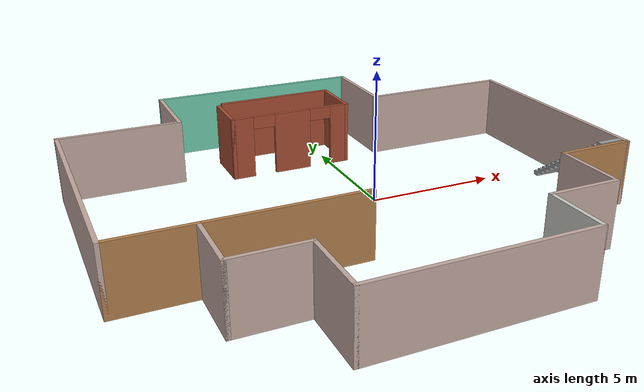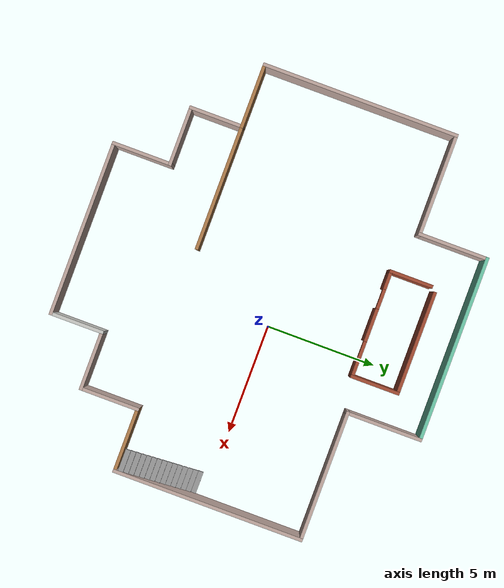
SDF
<?xml version='1.0'?>
<sdf version='1.6'>
  <model name='aakash.world'>
    <pose frame=''>-1.23426 -0.557609 0 0 -0 0</pose>
    <link name='Stairs_0'>
      <visual name='Stairs_0_Visual_0'>
        <pose frame=''>8.79859 0.013692 0.083333 0 -0 0</pose>
        <geometry>
          <box>
            <size>1 0.233333 0.166667</size>
          </box>
        </geometry>
        <material>
          <script>
            <uri>file://media/materials/scripts/gazebo.material</uri>
            <name>Gazebo/Grey</name>
          </script>
          <ambient>1 1 1 1</ambient>
        </material>
        <meta>
          <layer>0</layer>
        </meta>
      </visual>
      <collision name='Stairs_0_Collision_0'>
        <geometry>
          <box>
            <size>1 0.233333 0.166667</size>
          </box>
        </geometry>
        <pose frame=''>8.79859 0.013692 0.083333 0 -0 0</pose>
      </collision>
      <visual name='Stairs_0_Visual_1'>
        <pose frame=''>8.79859 -0.219641 0.25 0 -0 0</pose>
        <geometry>
          <box>
            <size>1 0.233333 0.166667</size>
          </box>
        </geometry>
        <material>
          <script>
            <uri>file://media/materials/scripts/gazebo.material</uri>
            <name>Gazebo/Grey</name>
          </script>
          <ambient>1 1 1 1</ambient>
        </material>
        <meta>
          <layer>0</layer>
        </meta>
      </visual>
      <collision name='Stairs_0_Collision_1'>
        <geometry>
          <box>
            <size>1 0.233333 0.166667</size>
          </box>
        </geometry>
        <pose frame=''>8.79859 -0.219641 0.25 0 -0 0</pose>
      </collision>
      <visual name='Stairs_0_Visual_2'>
        <pose frame=''>8.79859 -0.452974 0.416667 0 -0 0</pose>
        <geometry>
          <box>
            <size>1 0.233333 0.166667</size>
          </box>
        </geometry>
        <material>
          <script>
            <uri>file://media/materials/scripts/gazebo.material</uri>
            <name>Gazebo/Grey</name>
          </script>
          <ambient>1 1 1 1</ambient>
        </material>
        <meta>
          <layer>0</layer>
        </meta>
      </visual>
      <collision name='Stairs_0_Collision_2'>
        <geometry>
          <box>
            <size>1 0.233333 0.166667</size>
          </box>
        </geometry>
        <pose frame=''>8.79859 -0.452974 0.416667 0 -0 0</pose>
      </collision>
      <visual name='Stairs_0_Visual_3'>
        <pose frame=''>8.79859 -0.686308 0.583333 0 -0 0</pose>
        <geometry>
          <box>
            <size>1 0.233333 0.166667</size>
          </box>
        </geometry>
        <material>
          <script>
            <uri>file://media/materials/scripts/gazebo.material</uri>
            <name>Gazebo/Grey</name>
          </script>
          <ambient>1 1 1 1</ambient>
        </material>
        <meta>
          <layer>0</layer>
        </meta>
      </visual>
      <collision name='Stairs_0_Collision_3'>
        <geometry>
          <box>
            <size>1 0.233333 0.166667</size>
          </box>
        </geometry>
        <pose frame=''>8.79859 -0.686308 0.583333 0 -0 0</pose>
      </collision>
      <visual name='Stairs_0_Visual_4'>
        <pose frame=''>8.79859 -0.919641 0.75 0 -0 0</pose>
        <geometry>
          <box>
            <size>1 0.233333 0.166667</size>
          </box>
        </geometry>
        <material>
          <script>
            <uri>file://media/materials/scripts/gazebo.material</uri>
            <name>Gazebo/Grey</name>
          </script>
          <ambient>1 1 1 1</ambient>
        </material>
        <meta>
          <layer>0</layer>
        </meta>
      </visual>
      <collision name='Stairs_0_Collision_4'>
        <geometry>
          <box>
            <size>1 0.233333 0.166667</size>
          </box>
        </geometry>
        <pose frame=''>8.79859 -0.919641 0.75 0 -0 0</pose>
      </collision>
      <visual name='Stairs_0_Visual_5'>
        <pose frame=''>8.79859 -1.15297 0.916667 0 -0 0</pose>
        <geometry>
          <box>
            <size>1 0.233333 0.166667</size>
          </box>
        </geometry>
        <material>
          <script>
            <uri>file://media/materials/scripts/gazebo.material</uri>
            <name>Gazebo/Grey</name>
          </script>
          <ambient>1 1 1 1</ambient>
        </material>
        <meta>
          <layer>0</layer>
        </meta>
      </visual>
      <collision name='Stairs_0_Collision_5'>
        <geometry>
          <box>
            <size>1 0.233333 0.166667</size>
          </box>
        </geometry>
        <pose frame=''>8.79859 -1.15297 0.916667 0 -0 0</pose>
      </collision>
      <visual name='Stairs_0_Visual_6'>
        <pose frame=''>8.79859 -1.38631 1.08333 0 -0 0</pose>
        <geometry>
          <box>
            <size>1 0.233333 0.166667</size>
          </box>
        </geometry>
        <material>
          <script>
            <uri>file://media/materials/scripts/gazebo.material</uri>
            <name>Gazebo/Grey</name>
          </script>
          <ambient>1 1 1 1</ambient>
        </material>
        <meta>
          <layer>0</layer>
        </meta>
      </visual>
      <collision name='Stairs_0_Collision_6'>
        <geometry>
          <box>
            <size>1 0.233333 0.166667</size>
          </box>
        </geometry>
        <pose frame=''>8.79859 -1.38631 1.08333 0 -0 0</pose>
      </collision>
      <visual name='Stairs_0_Visual_7'>
        <pose frame=''>8.79859 -1.61964 1.25 0 -0 0</pose>
        <geometry>
          <box>
            <size>1 0.233333 0.166667</size>
          </box>
        </geometry>
        <material>
          <script>
            <uri>file://media/materials/scripts/gazebo.material</uri>
            <name>Gazebo/Grey</name>
          </script>
          <ambient>1 1 1 1</ambient>
        </material>
        <meta>
          <layer>0</layer>
        </meta>
      </visual>
      <collision name='Stairs_0_Collision_7'>
        <geometry>
          <box>
            <size>1 0.233333 0.166667</size>
          </box>
        </geometry>
        <pose frame=''>8.79859 -1.61964 1.25 0 -0 0</pose>
      </collision>
      <visual name='Stairs_0_Visual_8'>
        <pose frame=''>8.79859 -1.85297 1.41667 0 -0 0</pose>
        <geometry>
          <box>
            <size>1 0.233333 0.166667</size>
          </box>
        </geometry>
        <material>
          <script>
            <uri>file://media/materials/scripts/gazebo.material</uri>
            <name>Gazebo/Grey</name>
          </script>
          <ambient>1 1 1 1</ambient>
        </material>
        <meta>
          <layer>0</layer>
        </meta>
      </visual>
      <collision name='Stairs_0_Collision_8'>
        <geometry>
          <box>
            <size>1 0.233333 0.166667</size>
          </box>
        </geometry>
        <pose frame=''>8.79859 -1.85297 1.41667 0 -0 0</pose>
      </collision>
      <visual name='Stairs_0_Visual_9'>
        <pose frame=''>8.79859 -2.08631 1.58333 0 -0 0</pose>
        <geometry>
          <box>
            <size>1 0.233333 0.166667</size>
          </box>
        </geometry>
        <material>
          <script>
            <uri>file://media/materials/scripts/gazebo.material</uri>
            <name>Gazebo/Grey</name>
          </script>
          <ambient>1 1 1 1</ambient>
        </material>
        <meta>
          <layer>0</layer>
        </meta>
      </visual>
      <collision name='Stairs_0_Collision_9'>
        <geometry>
          <box>
            <size>1 0.233333 0.166667</size>
          </box>
        </geometry>
        <pose frame=''>8.79859 -2.08631 1.58333 0 -0 0</pose>
      </collision>
      <visual name='Stairs_0_Visual_10'>
        <pose frame=''>8.79859 -2.31964 1.75 0 -0 0</pose>
        <geometry>
          <box>
            <size>1 0.233333 0.166667</size>
          </box>
        </geometry>
        <material>
          <script>
            <uri>file://media/materials/scripts/gazebo.material</uri>
            <name>Gazebo/Grey</name>
          </script>
          <ambient>1 1 1 1</ambient>
        </material>
        <meta>
          <layer>0</layer>
        </meta>
      </visual>
      <collision name='Stairs_0_Collision_10'>
        <geometry>
          <box>
            <size>1 0.233333 0.166667</size>
          </box>
        </geometry>
        <pose frame=''>8.79859 -2.31964 1.75 0 -0 0</pose>
      </collision>
      <visual name='Stairs_0_Visual_11'>
        <pose frame=''>8.79859 -2.55297 1.91667 0 -0 0</pose>
        <geometry>
          <box>
            <size>1 0.233333 0.166667</size>
          </box>
        </geometry>
        <material>
          <script>
            <uri>file://media/materials/scripts/gazebo.material</uri>
            <name>Gazebo/Grey</name>
          </script>
          <ambient>1 1 1 1</ambient>
        </material>
        <meta>
          <layer>0</layer>
        </meta>
      </visual>
      <collision name='Stairs_0_Collision_11'>
        <geometry>
          <box>
            <size>1 0.233333 0.166667</size>
          </box>
        </geometry>
        <pose frame=''>8.79859 -2.55297 1.91667 0 -0 0</pose>
      </collision>
      <visual name='Stairs_0_Visual_12'>
        <pose frame=''>8.79859 -2.78631 2.08333 0 -0 0</pose>
        <geometry>
          <box>
            <size>1 0.233333 0.166667</size>
          </box>
        </geometry>
        <material>
          <script>
            <uri>file://media/materials/scripts/gazebo.material</uri>
            <name>Gazebo/Grey</name>
          </script>
          <ambient>1 1 1 1</ambient>
        </material>
        <meta>
          <layer>0</layer>
        </meta>
      </visual>
      <collision name='Stairs_0_Collision_12'>
        <geometry>
          <box>
            <size>1 0.233333 0.166667</size>
          </box>
        </geometry>
        <pose frame=''>8.79859 -2.78631 2.08333 0 -0 0</pose>
      </collision>
      <visual name='Stairs_0_Visual_13'>
        <pose frame=''>8.79859 -3.01964 2.25 0 -0 0</pose>
        <geometry>
          <box>
            <size>1 0.233333 0.166667</size>
          </box>
        </geometry>
        <material>
          <script>
            <uri>file://media/materials/scripts/gazebo.material</uri>
            <name>Gazebo/Grey</name>
          </script>
          <ambient>1 1 1 1</ambient>
        </material>
        <meta>
          <layer>0</layer>
        </meta>
      </visual>
      <collision name='Stairs_0_Collision_13'>
        <geometry>
          <box>
            <size>1 0.233333 0.166667</size>
          </box>
        </geometry>
        <pose frame=''>8.79859 -3.01964 2.25 0 -0 0</pose>
      </collision>
      <visual name='Stairs_0_Visual_14'>
        <pose frame=''>8.79859 -3.25298 2.41667 0 -0 0</pose>
        <geometry>
          <box>
            <size>1 0.233333 0.166667</size>
          </box>
        </geometry>
        <material>
          <script>
            <uri>file://media/materials/scripts/gazebo.material</uri>
            <name>Gazebo/Grey</name>
          </script>
          <ambient>1 1 1 1</ambient>
        </material>
        <meta>
          <layer>0</layer>
        </meta>
      </visual>
      <collision name='Stairs_0_Collision_14'>
        <geometry>
          <box>
            <size>1 0.233333 0.166667</size>
          </box>
        </geometry>
        <pose frame=''>8.79859 -3.25298 2.41667 0 -0 0</pose>
      </collision>
    </link>
    <link name='Wall_0'>
      <collision name='Wall_0_Collision'>
        <geometry>
          <box>
            <size>9 0.15 2.5</size>
          </box>
        </geometry>
        <pose frame=''>0 0 1.25 0 -0 0</pose>
      </collision>
      <visual name='Wall_0_Visual'>
        <pose frame=''>0 0 1.25 0 -0 0</pose>
        <geometry>
          <box>
            <size>9 0.15 2.5</size>
          </box>
        </geometry>
        <material>
          <script>
            <uri>file://media/materials/scripts/gazebo.material</uri>
            <name>Gazebo/Grey</name>
          </script>
          <ambient>0.760784 0.662745 0.627451 1</ambient>
        </material>
        <meta>
          <layer>0</layer>
        </meta>
      </visual>
      <pose frame=''>-9.375 0.925 0 0 0 -1.5708</pose>
    </link>
    <link name='Wall_1'>
      <collision name='Wall_1_Collision'>
        <geometry>
          <box>
            <size>3 0.15 2.5</size>
          </box>
        </geometry>
        <pose frame=''>0 0 1.25 0 -0 0</pose>
      </collision>
      <visual name='Wall_1_Visual'>
        <pose frame=''>0 0 1.25 0 -0 0</pose>
        <geometry>
          <box>
            <size>3 0.15 2.5</size>
          </box>
        </geometry>
        <material>
          <script>
            <uri>file://media/materials/scripts/gazebo.material</uri>
            <name>Gazebo/Wood</name>
          </script>
          <ambient>1 1 1 1</ambient>
        </material>
        <meta>
          <layer>0</layer>
        </meta>
      </visual>
      <pose frame=''>-7.95 -3.5 0 0 -0 0</pose>
    </link>
    <link name='Wall_10'>
      <collision name='Wall_10_Collision'>
        <geometry>
          <box>
            <size>8.75 0.15 2.5</size>
          </box>
        </geometry>
        <pose frame=''>0 0 1.25 0 -0 0</pose>
      </collision>
      <visual name='Wall_10_Visual'>
        <pose frame=''>0 0 1.25 0 -0 0</pose>
        <geometry>
          <box>
            <size>8.75 0.15 2.5</size>
          </box>
        </geometry>
        <material>
          <script>
            <uri>file://media/materials/scripts/gazebo.material</uri>
            <name>Gazebo/Grey</name>
          </script>
          <ambient>0.760784 0.662745 0.627451 1</ambient>
        </material>
        <meta>
          <layer>0</layer>
        </meta>
      </visual>
      <pose frame=''>9.375 0.8 0 0 -0 1.5708</pose>
    </link>
    <link name='Wall_11'>
      <collision name='Wall_11_Collision'>
        <geometry>
          <box>
            <size>6 0.15 2.5</size>
          </box>
        </geometry>
        <pose frame=''>0 0 1.25 0 -0 0</pose>
      </collision>
      <visual name='Wall_11_Visual'>
        <pose frame=''>0 0 1.25 0 -0 0</pose>
        <geometry>
          <box>
            <size>6 0.15 2.5</size>
          </box>
        </geometry>
        <material>
          <script>
            <uri>file://media/materials/scripts/gazebo.material</uri>
            <name>Gazebo/Grey</name>
          </script>
          <ambient>0.760784 0.662745 0.627451 1</ambient>
        </material>
        <meta>
          <layer>0</layer>
        </meta>
      </visual>
      <pose frame=''>6.45 5.1 0 0 -0 3.14159</pose>
    </link>
    <link name='Wall_12'>
      <collision name='Wall_12_Collision'>
        <geometry>
          <box>
            <size>3.5 0.15 2.5</size>
          </box>
        </geometry>
        <pose frame=''>0 0 1.25 0 -0 0</pose>
      </collision>
      <visual name='Wall_12_Visual'>
        <pose frame=''>0 0 1.25 0 -0 0</pose>
        <geometry>
          <box>
            <size>3.5 0.15 2.5</size>
          </box>
        </geometry>
        <material>
          <script>
            <uri>file://media/materials/scripts/gazebo.material</uri>
            <name>Gazebo/Grey</name>
          </script>
          <ambient>0.760784 0.662745 0.627451 1</ambient>
        </material>
        <meta>
          <layer>0</layer>
        </meta>
      </visual>
      <pose frame=''>3.525 6.775 0 0 -0 1.5708</pose>
    </link>
    <link name='Wall_13'>
      <collision name='Wall_13_Collision'>
        <geometry>
          <box>
            <size>8.5 0.15 2.5</size>
          </box>
        </geometry>
        <pose frame=''>0 0 1.25 0 -0 0</pose>
      </collision>
      <visual name='Wall_13_Visual'>
        <pose frame=''>0 0 1.25 0 -0 0</pose>
        <geometry>
          <box>
            <size>8.5 0.15 2.5</size>
          </box>
        </geometry>
        <material>
          <script>
            <uri>file://media/materials/scripts/gazebo.material</uri>
            <name>Gazebo/Grey</name>
          </script>
          <ambient>0.435294 0.796078 0.67451 1</ambient>
        </material>
        <meta>
          <layer>0</layer>
        </meta>
      </visual>
      <pose frame=''>-0.65 8.45 0 0 -0 3.14159</pose>
    </link>
    <link name='Wall_14'>
      <collision name='Wall_14_Collision'>
        <geometry>
          <box>
            <size>3.25 0.15 2.5</size>
          </box>
        </geometry>
        <pose frame=''>0 0 1.25 0 -0 0</pose>
      </collision>
      <visual name='Wall_14_Visual'>
        <pose frame=''>0 0 1.25 0 -0 0</pose>
        <geometry>
          <box>
            <size>3.25 0.15 2.5</size>
          </box>
        </geometry>
        <material>
          <script>
            <uri>file://media/materials/scripts/gazebo.material</uri>
            <name>Gazebo/Grey</name>
          </script>
          <ambient>0.760784 0.662745 0.627451 1</ambient>
        </material>
        <meta>
          <layer>0</layer>
        </meta>
      </visual>
      <pose frame=''>-4.825 6.9 0 0 0 -1.5708</pose>
    </link>
    <link name='Wall_15'>
      <collision name='Wall_15_Collision'>
        <geometry>
          <box>
            <size>4.7 0.15 2.5</size>
          </box>
        </geometry>
        <pose frame=''>0 0 1.25 0 -0 0</pose>
      </collision>
      <visual name='Wall_15_Visual'>
        <pose frame=''>0 0 1.25 0 -0 0</pose>
        <geometry>
          <box>
            <size>4.7 0.15 2.5</size>
          </box>
        </geometry>
        <material>
          <script>
            <uri>file://media/materials/scripts/gazebo.material</uri>
            <name>Gazebo/Grey</name>
          </script>
          <ambient>0.760784 0.662745 0.627451 1</ambient>
        </material>
        <meta>
          <layer>0</layer>
        </meta>
      </visual>
      <pose frame=''>-7.1 5.35 0 0 -0 3.14159</pose>
    </link>
    <link name='Wall_17'>
      <collision name='Wall_17_Collision'>
        <geometry>
          <box>
            <size>5.75 0.15 2.5</size>
          </box>
        </geometry>
        <pose frame=''>0 0 1.25 0 -0 0</pose>
      </collision>
      <visual name='Wall_17_Visual'>
        <pose frame=''>0 0 1.25 0 -0 0</pose>
        <geometry>
          <box>
            <size>5.75 0.15 2.5</size>
          </box>
        </geometry>
        <material>
          <script>
            <uri>file://media/materials/scripts/gazebo.material</uri>
            <name>Gazebo/Wood</name>
          </script>
          <ambient>1 1 1 1</ambient>
        </material>
        <meta>
          <layer>0</layer>
        </meta>
      </visual>
      <pose frame=''>-3.725 -3.5 0 0 -0 0</pose>
    </link>
    <link name='Wall_19'>
      <collision name='Wall_19_Collision'>
        <geometry>
          <box>
            <size>2 0.15 2.5</size>
          </box>
        </geometry>
        <pose frame=''>0 0 1.25 0 -0 0</pose>
      </collision>
      <visual name='Wall_19_Visual'>
        <pose frame=''>0 0 1.25 0 -0 0</pose>
        <geometry>
          <box>
            <size>2 0.15 2.5</size>
          </box>
        </geometry>
        <material>
          <script>
            <uri>file://media/materials/scripts/gazebo.material</uri>
            <name>Gazebo/Bricks</name>
          </script>
          <ambient>1 1 1 1</ambient>
        </material>
        <meta>
          <layer>0</layer>
        </meta>
      </visual>
      <pose frame=''>-2.87632 5.66318 0 0 0 -1.5708</pose>
    </link>
    <link name='Wall_2'>
      <collision name='Wall_2_Collision'>
        <geometry>
          <box>
            <size>2.5 0.15 2.5</size>
          </box>
        </geometry>
        <pose frame=''>0 0 1.25 0 -0 0</pose>
      </collision>
      <visual name='Wall_2_Visual'>
        <pose frame=''>0 0 1.25 0 -0 0</pose>
        <geometry>
          <box>
            <size>2.5 0.15 2.5</size>
          </box>
        </geometry>
        <material>
          <script>
            <uri>file://media/materials/scripts/gazebo.material</uri>
            <name>Gazebo/Grey</name>
          </script>
          <ambient>0.760784 0.662745 0.627451 1</ambient>
        </material>
        <meta>
          <layer>0</layer>
        </meta>
      </visual>
      <pose frame=''>-6.525 -4.675 0 0 0 -1.5708</pose>
    </link>
    <link name='Wall_20'>
      <pose frame=''>-0.451323 4.73818 0 0 -0 0</pose>
      <visual name='Wall_20_Visual_0'>
        <pose frame=''>-2.05069 0 1.25 0 -0 0</pose>
        <geometry>
          <box>
            <size>0.898627 0.15 2.5</size>
          </box>
        </geometry>
        <material>
          <script>
            <uri>file://media/materials/scripts/gazebo.material</uri>
            <name>Gazebo/Bricks</name>
          </script>
          <ambient>1 1 1 1</ambient>
        </material>
        <meta>
          <layer>0</layer>
        </meta>
      </visual>
      <collision name='Wall_20_Collision_0'>
        <geometry>
          <box>
            <size>0.898627 0.15 2.5</size>
          </box>
        </geometry>
        <pose frame=''>-2.05069 0 1.25 0 -0 0</pose>
      </collision>
      <visual name='Wall_20_Visual_1'>
        <pose frame=''>0.051497 0 1.25 0 -0 0</pose>
        <geometry>
          <box>
            <size>1.50574 0.15 2.5</size>
          </box>
        </geometry>
        <material>
          <script>
            <uri>file://media/materials/scripts/gazebo.material</uri>
            <name>Gazebo/Bricks</name>
          </script>
          <ambient>1 1 1 1</ambient>
        </material>
        <meta>
          <layer>0</layer>
        </meta>
      </visual>
      <collision name='Wall_20_Collision_1'>
        <geometry>
          <box>
            <size>1.50574 0.15 2.5</size>
          </box>
        </geometry>
        <pose frame=''>0.051497 0 1.25 0 -0 0</pose>
      </collision>
      <visual name='Wall_20_Visual_2'>
        <pose frame=''>2.10218 0 1.25 0 -0 0</pose>
        <geometry>
          <box>
            <size>0.795633 0.15 2.5</size>
          </box>
        </geometry>
        <material>
          <script>
            <uri>file://media/materials/scripts/gazebo.material</uri>
            <name>Gazebo/Bricks</name>
          </script>
          <ambient>1 1 1 1</ambient>
        </material>
        <meta>
          <layer>0</layer>
        </meta>
      </visual>
      <collision name='Wall_20_Collision_2'>
        <geometry>
          <box>
            <size>0.795633 0.15 2.5</size>
          </box>
        </geometry>
        <pose frame=''>2.10218 0 1.25 0 -0 0</pose>
      </collision>
      <visual name='Wall_20_Visual_3'>
        <pose frame=''>-1.15137 0 2.25 0 -0 0</pose>
        <geometry>
          <box>
            <size>0.9 0.15 0.5</size>
          </box>
        </geometry>
        <material>
          <script>
            <uri>file://media/materials/scripts/gazebo.material</uri>
            <name>Gazebo/Bricks</name>
          </script>
          <ambient>1 1 1 1</ambient>
        </material>
        <meta>
          <layer>0</layer>
        </meta>
      </visual>
      <collision name='Wall_20_Collision_3'>
        <geometry>
          <box>
            <size>0.9 0.15 0.5</size>
          </box>
        </geometry>
        <pose frame=''>-1.15137 0 2.25 0 -0 0</pose>
      </collision>
      <visual name='Wall_20_Visual_4'>
        <pose frame=''>1.25437 0 2.25 0 -0 0</pose>
        <geometry>
          <box>
            <size>0.9 0.15 0.5</size>
          </box>
        </geometry>
        <material>
          <script>
            <uri>file://media/materials/scripts/gazebo.material</uri>
            <name>Gazebo/Bricks</name>
          </script>
          <ambient>1 1 1 1</ambient>
        </material>
        <meta>
          <layer>0</layer>
        </meta>
      </visual>
      <collision name='Wall_20_Collision_4'>
        <geometry>
          <box>
            <size>0.9 0.15 0.5</size>
          </box>
        </geometry>
        <pose frame=''>1.25437 0 2.25 0 -0 0</pose>
      </collision>
    </link>
    <link name='Wall_21'>
      <collision name='Wall_21_Collision'>
        <geometry>
          <box>
            <size>2.25 0.15 2.5</size>
          </box>
        </geometry>
        <pose frame=''>0 0 1.25 0 -0 0</pose>
      </collision>
      <visual name='Wall_21_Visual'>
        <pose frame=''>0 0 1.25 0 -0 0</pose>
        <geometry>
          <box>
            <size>2.25 0.15 2.5</size>
          </box>
        </geometry>
        <material>
          <script>
            <uri>file://media/materials/scripts/gazebo.material</uri>
            <name>Gazebo/Bricks</name>
          </script>
          <ambient>1 1 1 1</ambient>
        </material>
        <meta>
          <layer>0</layer>
        </meta>
      </visual>
      <pose frame=''>1.97368 5.78818 0 0 -0 1.5708</pose>
    </link>
    <link name='Wall_22'>
      <collision name='Wall_22_Collision'>
        <geometry>
          <box>
            <size>4.75 0.15 2.5</size>
          </box>
        </geometry>
        <pose frame=''>0 0 1.25 0 -0 0</pose>
      </collision>
      <visual name='Wall_22_Visual'>
        <pose frame=''>0 0 1.25 0 -0 0</pose>
        <geometry>
          <box>
            <size>4.75 0.15 2.5</size>
          </box>
        </geometry>
        <material>
          <script>
            <uri>file://media/materials/scripts/gazebo.material</uri>
            <name>Gazebo/Bricks</name>
          </script>
          <ambient>1 1 1 1</ambient>
        </material>
        <meta>
          <layer>0</layer>
        </meta>
      </visual>
      <pose frame=''>-0.326323 6.83818 0 0 -0 3.14159</pose>
    </link>
    <link name='Wall_3'>
      <collision name='Wall_3_Collision'>
        <geometry>
          <box>
            <size>2.75 0.15 2.5</size>
          </box>
        </geometry>
        <pose frame=''>0 0 1.25 0 -0 0</pose>
      </collision>
      <visual name='Wall_3_Visual'>
        <pose frame=''>0 0 1.25 0 -0 0</pose>
        <geometry>
          <box>
            <size>2.75 0.15 2.5</size>
          </box>
        </geometry>
        <material>
          <script>
            <uri>file://media/materials/scripts/gazebo.material</uri>
            <name>Gazebo/Grey</name>
          </script>
          <ambient>0.760784 0.662745 0.627451 1</ambient>
        </material>
        <meta>
          <layer>0</layer>
        </meta>
      </visual>
      <pose frame=''>-5.225 -5.85 0 0 -0 0</pose>
    </link>
    <link name='Wall_4'>
      <collision name='Wall_4_Collision'>
        <geometry>
          <box>
            <size>2.75 0.15 2.5</size>
          </box>
        </geometry>
        <pose frame=''>0 0 1.25 0 -0 0</pose>
      </collision>
      <visual name='Wall_4_Visual'>
        <pose frame=''>0 0 1.25 0 -0 0</pose>
        <geometry>
          <box>
            <size>2.75 0.15 2.5</size>
          </box>
        </geometry>
        <material>
          <script>
            <uri>file://media/materials/scripts/gazebo.material</uri>
            <name>Gazebo/Grey</name>
          </script>
          <ambient>0.760784 0.662745 0.627451 1</ambient>
        </material>
        <meta>
          <layer>0</layer>
        </meta>
      </visual>
      <pose frame=''>-3.925 -7.15 0 0 0 -1.5708</pose>
    </link>
    <link name='Wall_5'>
      <collision name='Wall_5_Collision'>
        <geometry>
          <box>
            <size>8 0.15 2.5</size>
          </box>
        </geometry>
        <pose frame=''>0 0 1.25 0 -0 0</pose>
      </collision>
      <visual name='Wall_5_Visual'>
        <pose frame=''>0 0 1.25 0 -0 0</pose>
        <geometry>
          <box>
            <size>8 0.15 2.5</size>
          </box>
        </geometry>
        <material>
          <script>
            <uri>file://media/materials/scripts/gazebo.material</uri>
            <name>Gazebo/Grey</name>
          </script>
          <ambient>0.760784 0.662745 0.627451 1</ambient>
        </material>
        <meta>
          <layer>0</layer>
        </meta>
      </visual>
      <pose frame=''>0 -8.45 0 0 -0 0</pose>
    </link>
    <link name='Wall_6'>
      <collision name='Wall_6_Collision'>
        <geometry>
          <box>
            <size>2.5 0.15 2.5</size>
          </box>
        </geometry>
        <pose frame=''>0 0 1.25 0 -0 0</pose>
      </collision>
      <visual name='Wall_6_Visual'>
        <pose frame=''>0 0 1.25 0 -0 0</pose>
        <geometry>
          <box>
            <size>2.5 0.15 2.5</size>
          </box>
        </geometry>
        <material>
          <script>
            <uri>file://media/materials/scripts/gazebo.material</uri>
            <name>Gazebo/CeilingTiled</name>
          </script>
          <ambient>1 1 1 1</ambient>
        </material>
        <meta>
          <layer>0</layer>
        </meta>
      </visual>
      <pose frame=''>3.925 -7.275 0 0 -0 1.5708</pose>
    </link>
    <link name='Wall_7'>
      <collision name='Wall_7_Collision'>
        <geometry>
          <box>
            <size>2.75 0.15 2.5</size>
          </box>
        </geometry>
        <pose frame=''>0 0 1.25 0 -0 0</pose>
      </collision>
      <visual name='Wall_7_Visual'>
        <pose frame=''>0 0 1.25 0 -0 0</pose>
        <geometry>
          <box>
            <size>2.75 0.15 2.5</size>
          </box>
        </geometry>
        <material>
          <script>
            <uri>file://media/materials/scripts/gazebo.material</uri>
            <name>Gazebo/Grey</name>
          </script>
          <ambient>0.760784 0.662745 0.627451 1</ambient>
        </material>
        <meta>
          <layer>0</layer>
        </meta>
      </visual>
      <pose frame=''>5.225 -6.1 0 0 -0 0</pose>
    </link>
    <link name='Wall_8'>
      <collision name='Wall_8_Collision'>
        <geometry>
          <box>
            <size>2.75 0.15 2.5</size>
          </box>
        </geometry>
        <pose frame=''>0 0 1.25 0 -0 0</pose>
      </collision>
      <visual name='Wall_8_Visual'>
        <pose frame=''>0 0 1.25 0 -0 0</pose>
        <geometry>
          <box>
            <size>2.75 0.15 2.5</size>
          </box>
        </geometry>
        <material>
          <script>
            <uri>file://media/materials/scripts/gazebo.material</uri>
            <name>Gazebo/Grey</name>
          </script>
          <ambient>0.760784 0.662745 0.627451 1</ambient>
        </material>
        <meta>
          <layer>0</layer>
        </meta>
      </visual>
      <pose frame=''>6.525 -4.8 0 0 -0 1.5708</pose>
    </link>
    <link name='Wall_9'>
      <collision name='Wall_9_Collision'>
        <geometry>
          <box>
            <size>3 0.15 2.5</size>
          </box>
        </geometry>
        <pose frame=''>0 0 1.25 0 -0 0</pose>
      </collision>
      <visual name='Wall_9_Visual'>
        <pose frame=''>0 0 1.25 0 -0 0</pose>
        <geometry>
          <box>
            <size>3 0.15 2.5</size>
          </box>
        </geometry>
        <material>
          <script>
            <uri>file://media/materials/scripts/gazebo.material</uri>
            <name>Gazebo/Wood</name>
          </script>
          <ambient>1 1 1 1</ambient>
        </material>
        <meta>
          <layer>0</layer>
        </meta>
      </visual>
      <pose frame=''>7.95 -3.5 0 0 -0 0</pose>
    </link>
    <static>1</static>
  </model>
</sdf>
